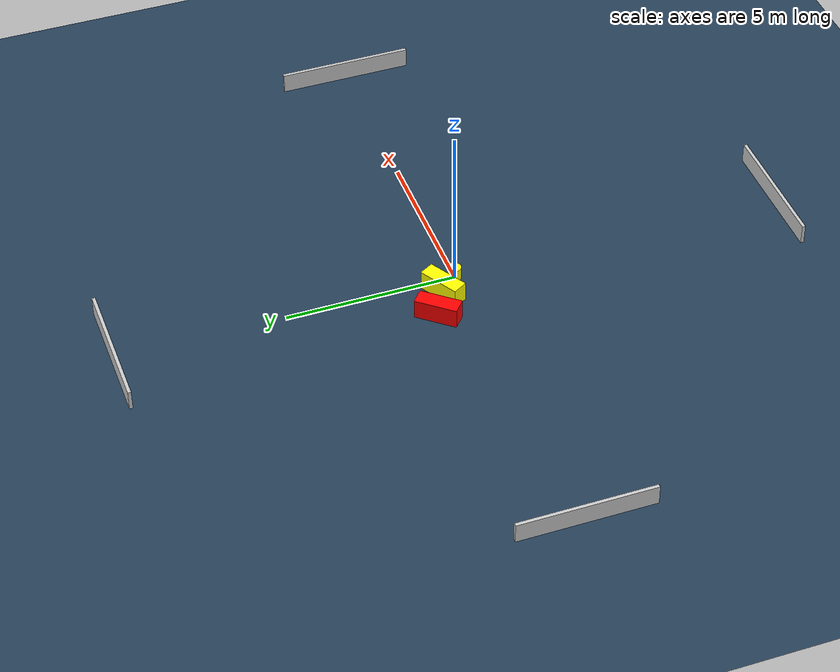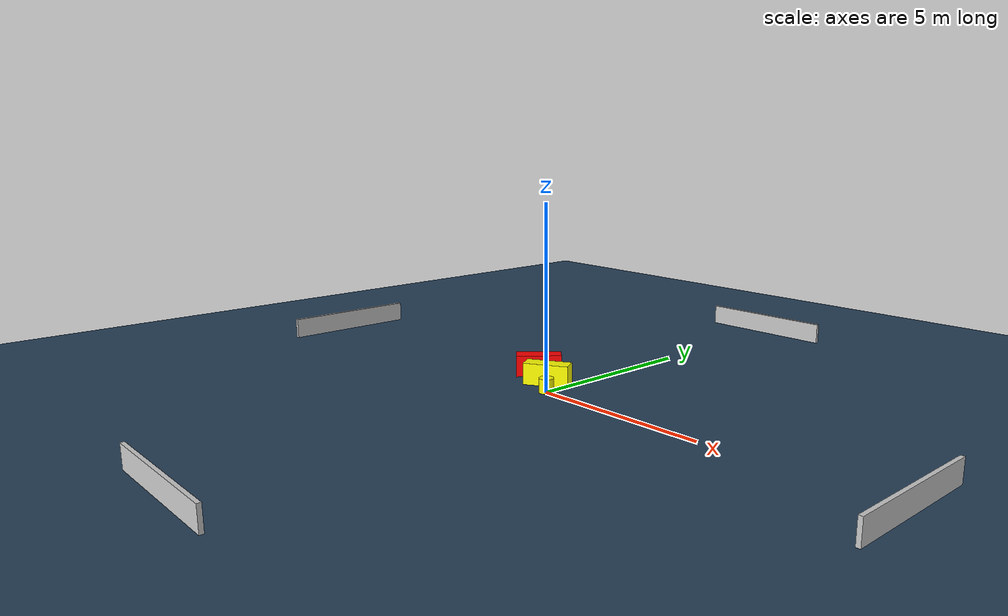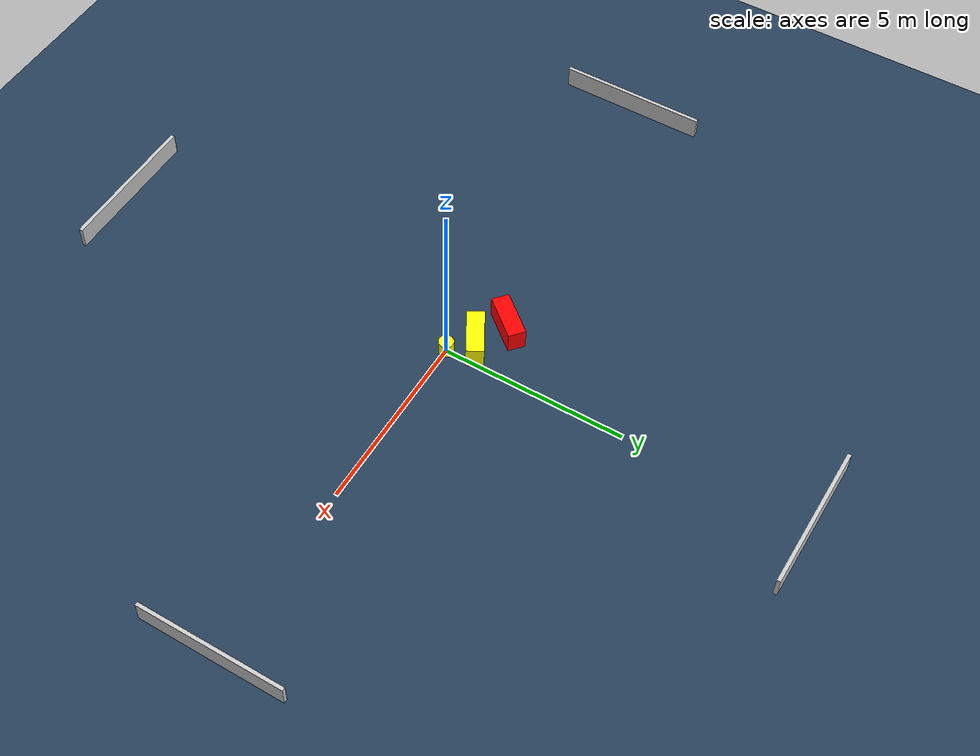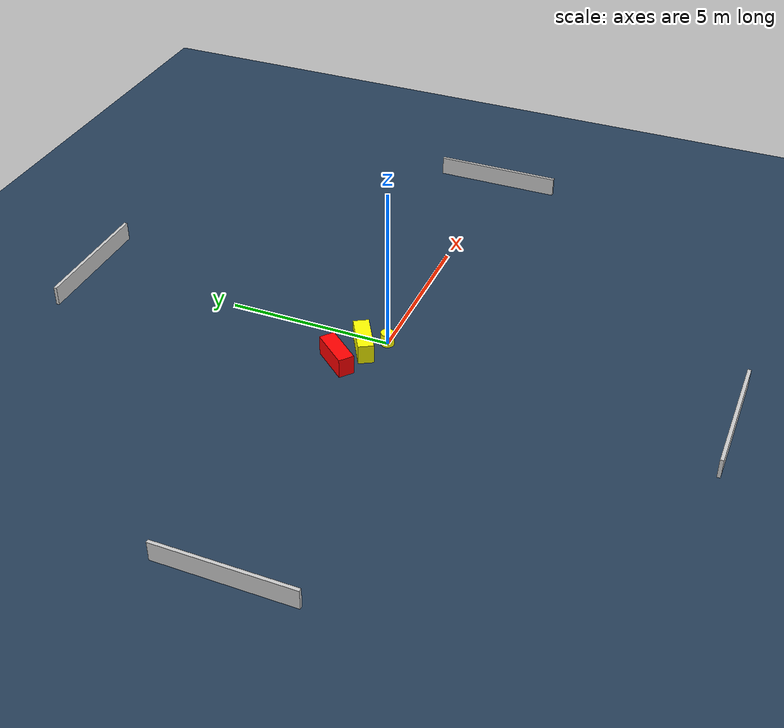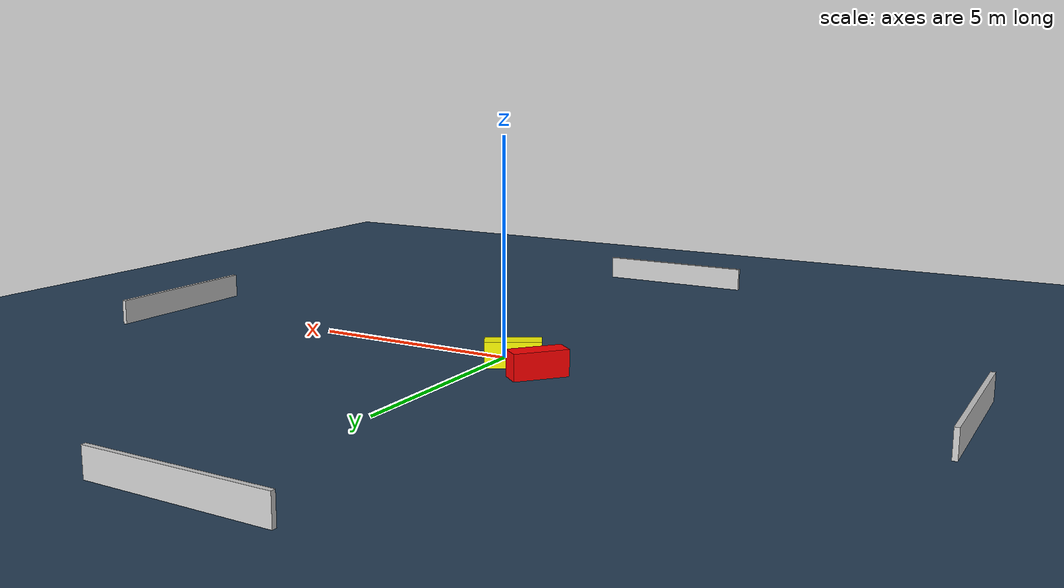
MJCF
<?xml version="1.0" ?>
<mujoco model="generated_environment">
  <option timestep="0.01" integrator="RK4" cone="elliptic"/>
  <default>
    <geom density="1"/>
  </default>
  <asset>
    <texture builtin="gradient" height="3072" name="skybox" rgb1="0.3 0.5 0.7" rgb2="0 0 0" type="skybox" width="512"/>
    <texture builtin="checker" height="300" name="groundplane" rgb1="0.2 0.3 0.4" rgb2="0.1 0.2 0.3" type="2d" width="300"/>
    <material name="groundplane" reflectance="0.2" texrepeat="5 5" texture="groundplane"/>
  </asset>
  <worldbody>
    <light dir="0 0 -1" directional="true" pos="0 0 1.5"/>
    <geom condim="3" friction="0.5 0.005 0.001" material="groundplane" name="floor" pos="0 0 0" size="0 0 0.05" type="plane"/>
    <body name="walls">
      <geom name="wall_1" condim="4" pos="-10.0 0.0 0.3" rgba="0.800000011920929 0.800000011920929 0.800000011920929 1.0" size="0.05 2.0 0.3" type="box"/>
      <geom name="wall_2" condim="4" pos="10.0 0.0 0.3" rgba="0.800000011920929 0.800000011920929 0.800000011920929 1.0" size="0.05 2.0 0.3" type="box"/>
      <geom name="wall_3" condim="4" pos="0.0 -10.0 0.3" rgba="0.800000011920929 0.800000011920929 0.800000011920929 1.0" size="2.0 0.05 0.3" type="box"/>
      <geom name="wall_4" condim="4" pos="0.0 10.0 0.3" rgba="0.800000011920929 0.800000011920929 0.800000011920929 1.0" size="2.0 0.05 0.3" type="box"/>
    </body>
    <body name="robot">
      <joint name="joint_x" type="slide" pos="0 0 0" axis="1 0 0"/>
      <joint name="joint_y" type="slide" pos="0 0 0" axis="0 1 0"/>
      <geom name="robot" type="cylinder" pos="0.0 0.0 0.2" size="0.2 0.2 0.0" mass="5.0" friction="1.0 0.005 0.0001" condim="4" rgba="1.0 1.0 0.0 1.0"/>
    </body>
    <body name="obstacle_1_movable">
      <geom name="obstacle_1_movable" condim="4" pos="-0.5333652681502912 0.5279070915278458 0.3" euler="0 0 29.790730678793906" friction="0.0 0.005 0.001" rgba="1.0 1.0 0.0 1.0" size="0.6332904584463237 0.233030823838897 0.3" type="box" mass="0.1"/>
      <joint type="free"/>
    </body>
    <body name="obstacle_2_static">
      <geom name="obstacle_2_static" condim="4" pos="-1.398859210630912 0.9867340167922508 0.3" euler="0 0 320.11236714215113" friction="0.0 0.005 0.001" rgba="1.0 0.0 0.0 1.0" size="0.23656620180847582 0.632523244831853 0.3" type="box"/>
    </body>
  </worldbody>
  <actuator>
    <motor name="actuator_x" joint="joint_x" gear="1" ctrlrange="-1 1"/>
    <motor name="actuator_y" joint="joint_y" gear="1" ctrlrange="-1 1"/>
  </actuator>
</mujoco>
